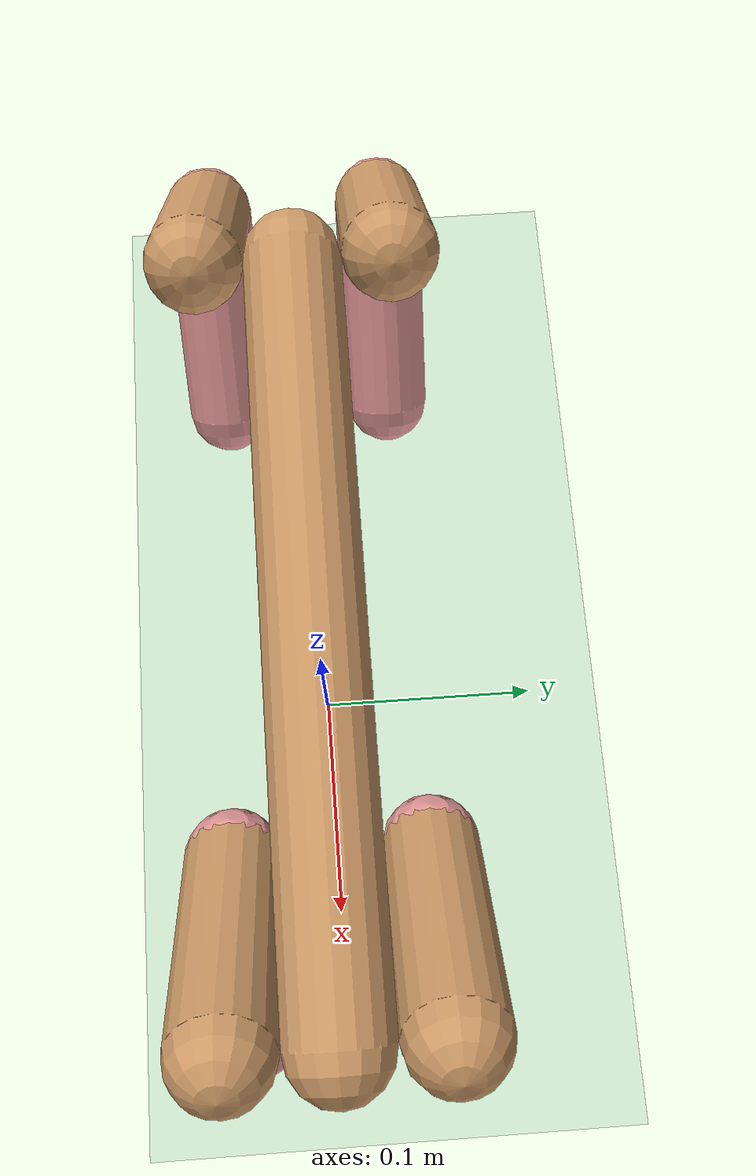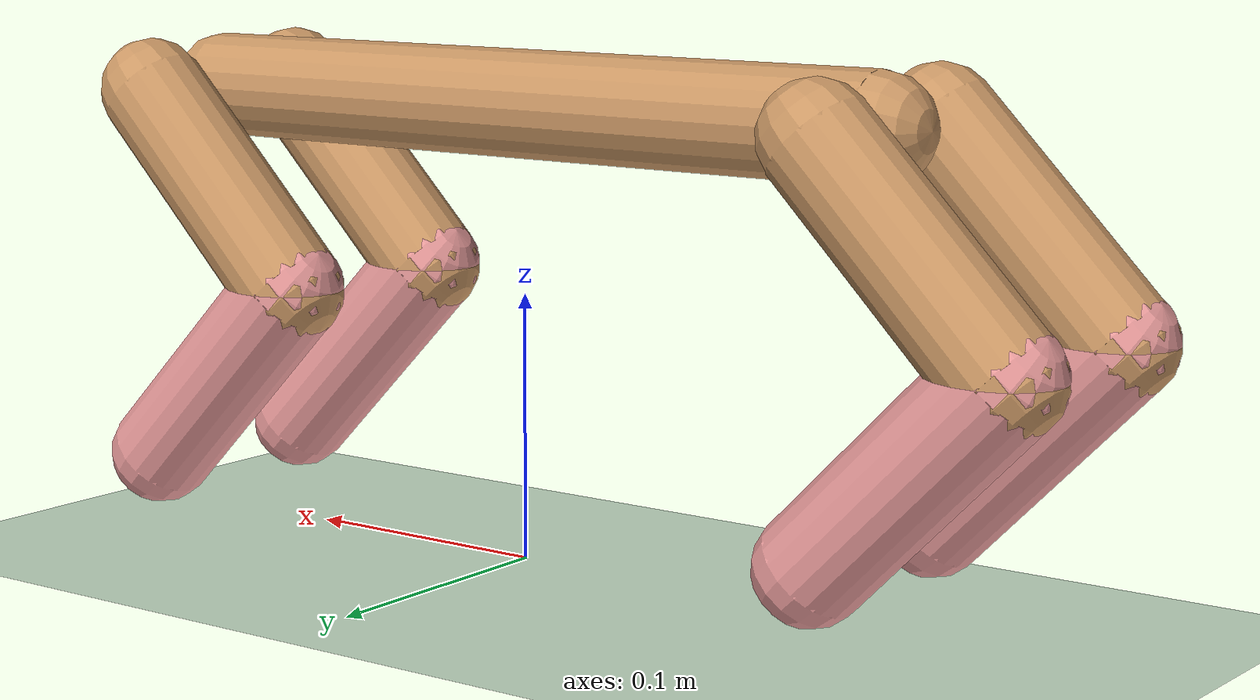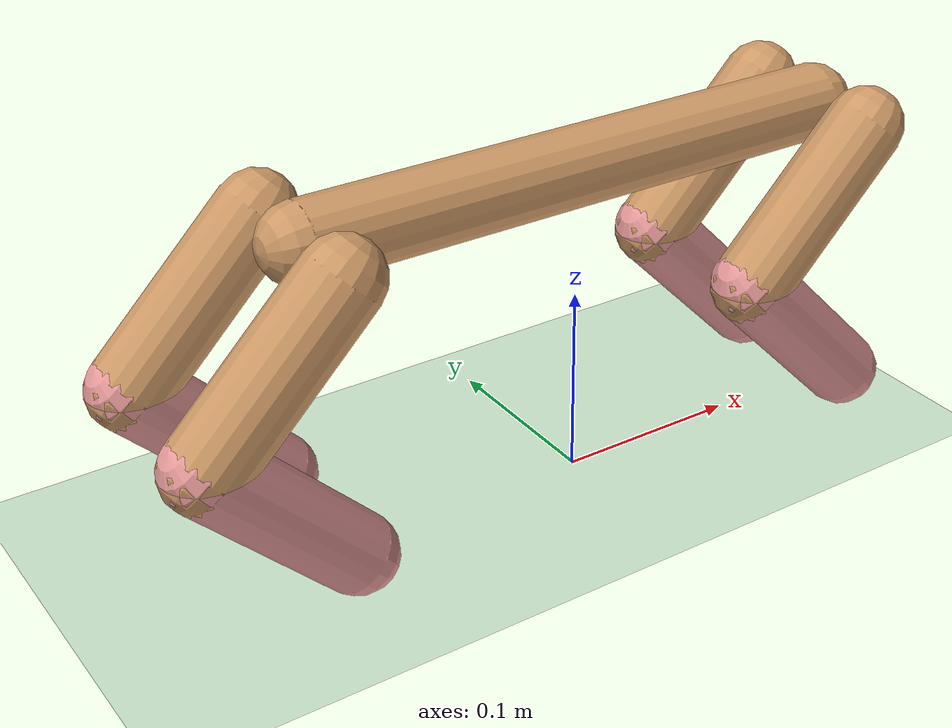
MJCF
<mujoco model="cheetah">
  <compiler angle="radian" coordinate="local" inertiafromgeom="true" settotalmass="4.5"/>
  <default>
    <joint armature=".01" damping="3" limited="true" frictionloss="0.2" stiffness="8"/>
    <geom conaffinity="0" condim="3" contype="1" friction="1.5 .1 .1" rgba="0.8 0.6 .4 1" solimp="0.0 0.8 0.01" solref="0.02 1"/>
    <motor ctrllimited="true" ctrlrange="-1 1"/>
  </default>
  <size nstack="300000" nuser_geom="1"/>
  <option gravity="0 0 -9.81" timestep="0.01"/>
  <asset>
    <texture builtin="gradient" height="100" rgb1="1 1 1" rgb2="0 0 0" type="skybox" width="100"/>
    <texture builtin="flat" height="1278" mark="cross" markrgb="1 1 1" name="texgeom" random="0.01" rgb1="0.8 0.6 0.4" rgb2="0.8 0.6 0.4" type="cube" width="127"/>
    <texture builtin="checker" height="100" name="texplane" rgb1="0 0 0" rgb2="0.8 0.8 0.8" type="2d" width="100"/>
    <material name="MatPlane" reflectance="0.5" shininess="1" specular="1" texrepeat="60 60" texture="texplane"/>
    <material name="geom" texture="texgeom" texuniform="true"/>
  </asset>
  <worldbody>
    <light cutoff="100" diffuse="1 1 1" dir="-0 0 -1.3" directional="true" exponent="1" pos="0 0 1.3" specular=".1 .1 .1"/>
    <geom conaffinity="1" condim="3" material="MatPlane" name="floor" pos="0 0 0" rgba="0.8 0.9 0.8 1" size="40 40 40" type="plane"/>
    <body name="torso" pos="0 0 .17">
      <camera name="track" mode="trackcom" pos="0 -3 0.3" xyaxes="1 0 0 0 0 1"/>
      <joint armature="0" axis="1 0 0" damping="0" limited="false" name="rootx" pos="0 0 0" stiffness="0" type="slide"/>
      <joint armature="0" axis="0 0 1" damping="0" limited="false" name="rootz" pos="0 0 0" stiffness="0" type="slide"/>
      <joint armature="0" axis="0 1 0" damping="0" limited="false" name="rooty" pos="0 0 0" stiffness="0" type="hinge"/>
      <geom fromto="-.15 0 0 .15 0 0" name="torso" size="0.02" type="capsule"/>

      <!-- Left front leg -->
      <body name="lfthigh" pos=".15 0.04 0">
        <joint axis="0 1 0" name="lfthigh" pos="0 0 0" range="-1 .7" type="hinge"/>
        <geom axisangle="0 1 0 .78" name="lfthigh" pos="-.03535 0 -.03535" size="0.02 .05" type="capsule"/>
        <body name="lfshin" pos="-.0707 0 -.0707">
          <joint axis="0 1 0" name="lfshin" pos="0 0 0" range="-1.2 .87" type="hinge"/>
          <geom axisangle="0 1 0 -.78" name="lfshin" pos=".03535 0 -.03535" rgba="0.9 0.6 0.6 1" size="0.02 .05" type="capsule"/>
        </body>
      </body>

      <!-- Right front leg -->
      <body name="rfthigh" pos=".15 -0.04 0">
        <joint axis="0 1 0" name="rfthigh" pos="0 0 0" range="-1 .7" type="hinge"/>
        <geom axisangle="0 1 0 .78" name="rfthigh" pos="-.03535 0 -.03535" size="0.02 .05" type="capsule"/>
        <body name="rfshin" pos="-.0707 0 -.0707">
          <joint axis="0 1 0" name="rfshin" pos="0 0 0" range="-1.2 .87" type="hinge"/>
          <geom axisangle="0 1 0 -.78" name="rfshin" pos=".03535 0 -.03535" rgba="0.9 0.6 0.6 1" size="0.02 .05" type="capsule"/>
        </body>
      </body>

      <body name="lbthigh" pos="-.15 0.04 0">
        <joint axis="0 1 0" name="lbthigh" pos="0 0 0" range="-1 .7" type="hinge"/>
        <geom axisangle="0 1 0 .78" name="lbthigh" pos="-.03535 0 -.03535" size="0.02 .05" type="capsule"/>
        <body name="lbshin" pos="-.0707 0 -.0707">
          <joint axis="0 1 0" name="lbshin" pos="0 0 0" range="-1.2 .87" type="hinge"/>
          <geom axisangle="0 1 0 -.78" name="lbshin" pos=".03535 0 -.03535" rgba="0.9 0.6 0.6 1" size="0.02 .05" type="capsule"/>
        </body>
      </body>

      <body name="rbthigh" pos="-.15 -0.04 0">
        <joint axis="0 1 0" name="rbthigh" pos="0 0 0" range="-1 .7" type="hinge"/>
        <geom axisangle="0 1 0 .78" name="rbthigh" pos="-.03535 0 -.03535" size="0.02 .05" type="capsule"/>
        <body name="rbshin" pos="-.0707 0 -.0707">
          <joint axis="0 1 0" name="rbshin" pos="0 0 0" range="-1.2 .87" type="hinge"/>
          <geom axisangle="0 1 0 -.78" name="rbshin" pos=".03535 0 -.03535" rgba="0.9 0.6 0.6 1" size="0.02 .05" type="capsule"/>
        </body>
      </body>
    </body>
  </worldbody>
  <actuator>
    <motor gear="1" joint="lfthigh" name="lfthigh" ctrlrange="-10 10"/>
    <motor gear="1" joint="lfshin" name="lfshin" ctrlrange="-10 10"/>
    <motor gear="1" joint="rfthigh" name="rfthigh" ctrlrange="-10 10"/>
    <motor gear="1" joint="rfshin" name="rfshin" ctrlrange="-10 10"/>
    <motor gear="1" joint="lbthigh" name="lbthigh" ctrlrange="-10 10"/>
    <motor gear="1" joint="lbshin" name="lbshin" ctrlrange="-10 10"/>
    <motor gear="1" joint="rbthigh" name="rbthigh" ctrlrange="-10 10"/>
    <motor gear="1" joint="rbshin" name="rbshin" ctrlrange="-10 10"/>
  </actuator>
</mujoco>
